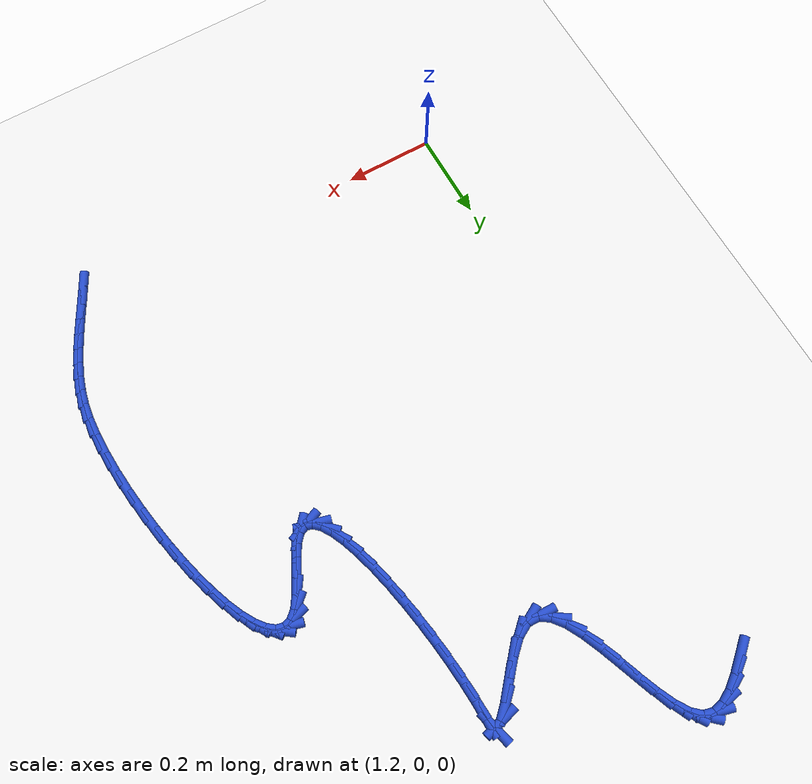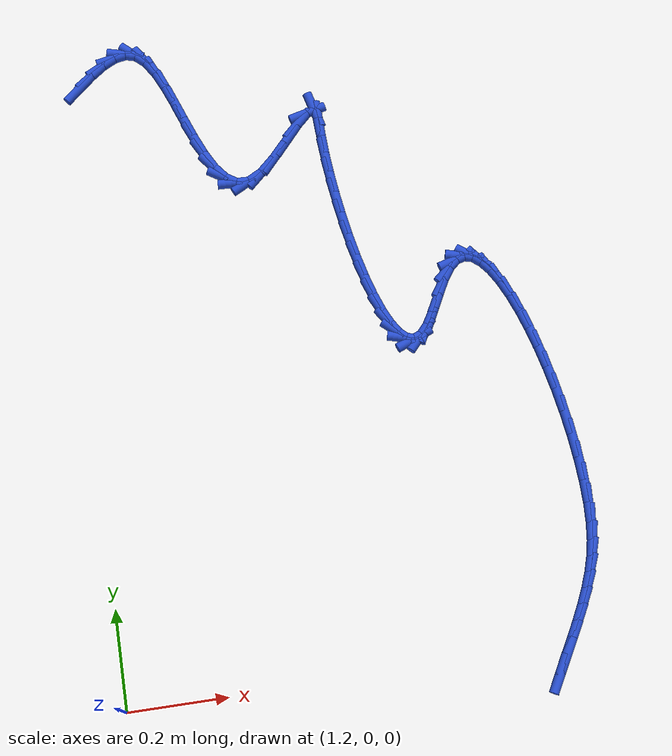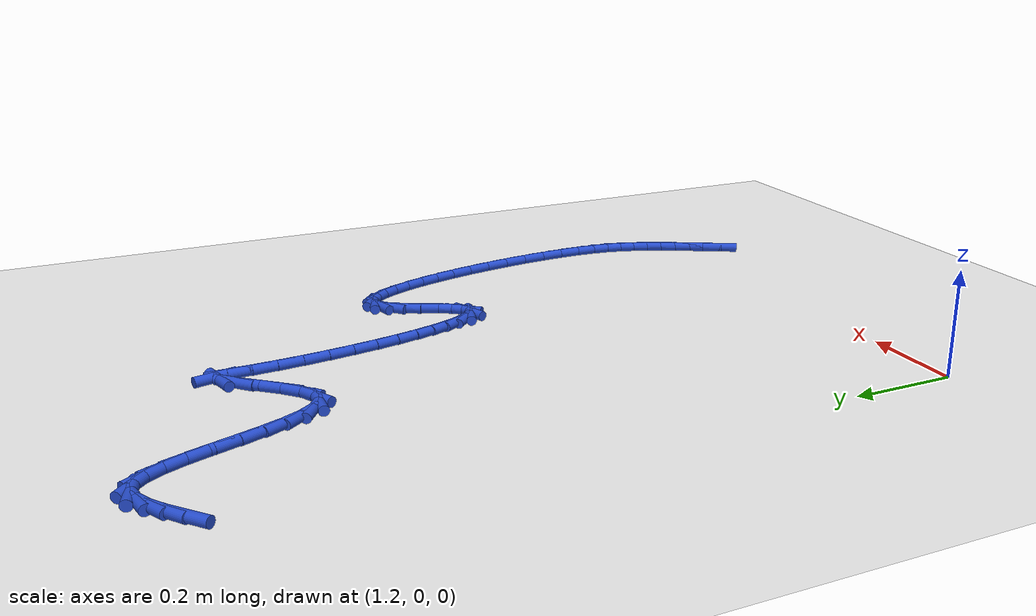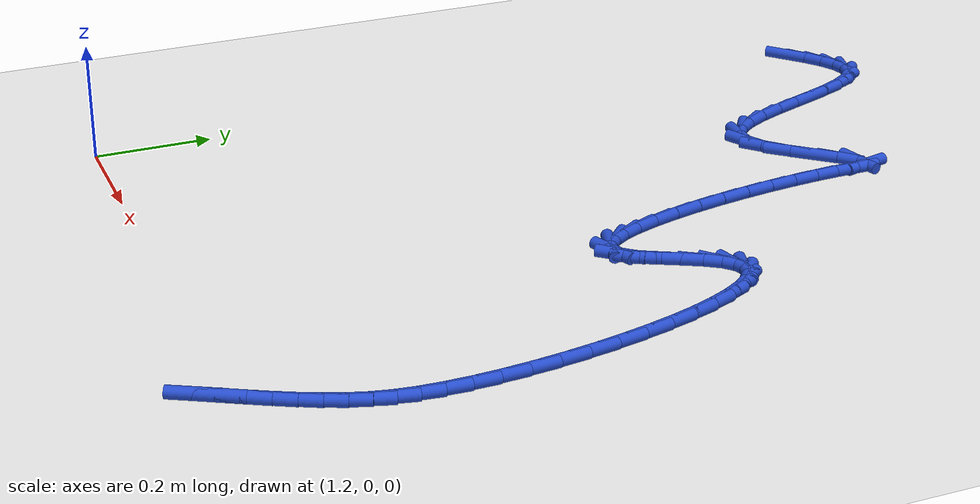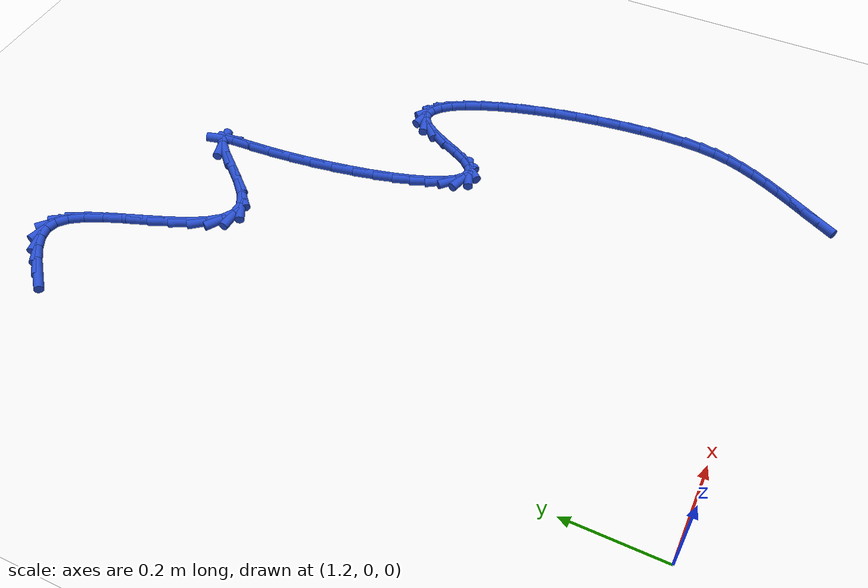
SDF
<sdf version="1.6">
 <world name="default">
  <model name="ground_plane">
   <static>1</static>
   <link name="link">
    <collision name="collision">
     <geometry><plane><normal>0 0 1</normal><size>100 100</size></plane></geometry>
     <surface><friction><ode><mu>100</mu><mu2>50</mu2></ode></friction></surface>
    </collision>
    <visual name="visual">
     <cast_shadows>0</cast_shadows>
     <geometry><plane><normal>0 0 1</normal><size>100 100</size></plane></geometry>
     <material>
      <script><uri>file://media/materials/scripts/gazebo.material</uri><name>Gazebo/WhiteGlow</name></script>
     </material>
    </visual>
   </link>
  </model>
  <model name="line">
   <link name="link_67">
    <pose>1.2501975870536717 1.3087763080058785 0.01 0 1.57 0.716367386241754</pose>
    <collision name="collision">
     <geometry><cylinder><radius>0.01</radius><length>0.08</length></cylinder></geometry>
    </collision>
    <visual name="visual">
     <material>
      <script><name>Gazebo/Blue</name><uri>file://media/materials/scripts/gazebo.material</uri></script>
     </material>
     <geometry><cylinder><radius>0.01</radius><length>0.08</length></cylinder></geometry>
    </visual>
   </link>
   <link name="link_68">
    <pose>1.2786753119204468 1.333570760631319 0.01 0 1.57 0.633275909170167</pose>
    <collision name="collision">
     <geometry><cylinder><radius>0.01</radius><length>0.08</length></cylinder></geometry>
    </collision>
    <visual name="visual">
     <material>
      <script><name>Gazebo/Blue</name><uri>file://media/materials/scripts/gazebo.material</uri></script>
     </material>
     <geometry><cylinder><radius>0.01</radius><length>0.08</length></cylinder></geometry>
    </visual>
   </link>
   <link name="link_69">
    <pose>1.305961632299537 1.353602853651737 0.01 0 1.57 0.4769127367618851</pose>
    <collision name="collision">
     <geometry><cylinder><radius>0.01</radius><length>0.08</length></cylinder></geometry>
    </collision>
    <visual name="visual">
     <material>
      <script><name>Gazebo/Blue</name><uri>file://media/materials/scripts/gazebo.material</uri></script>
     </material>
     <geometry><cylinder><radius>0.01</radius><length>0.08</length></cylinder></geometry>
    </visual>
   </link>
   <link name="link_70">
    <pose>1.3317548015721545 1.366930006420969 0.01 0 1.57 0.1925820298142139</pose>
    <collision name="collision">
     <geometry><cylinder><radius>0.01</radius><length>0.08</length></cylinder></geometry>
    </collision>
    <visual name="visual">
     <material>
      <script><name>Gazebo/Blue</name><uri>file://media/materials/scripts/gazebo.material</uri></script>
     </material>
     <geometry><cylinder><radius>0.01</radius><length>0.08</length></cylinder></geometry>
    </visual>
   </link>
   <link name="link_71">
    <pose>1.3557530731195113 1.3716096382928513 0.01 0 1.57 -0.2635854516956681</pose>
    <collision name="collision">
     <geometry><cylinder><radius>0.01</radius><length>0.08</length></cylinder></geometry>
    </collision>
    <visual name="visual">
     <material>
      <script><name>Gazebo/Blue</name><uri>file://media/materials/scripts/gazebo.material</uri></script>
     </material>
     <geometry><cylinder><radius>0.01</radius><length>0.08</length></cylinder></geometry>
    </visual>
   </link>
   <link name="link_72">
    <pose>1.3776547003228194 1.3656991686212203 0.01 0 1.57 -0.7359976320520708</pose>
    <collision name="collision">
     <geometry><cylinder><radius>0.01</radius><length>0.08</length></cylinder></geometry>
    </collision>
    <visual name="visual">
     <material>
      <script><name>Gazebo/Blue</name><uri>file://media/materials/scripts/gazebo.material</uri></script>
     </material>
     <geometry><cylinder><radius>0.01</radius><length>0.08</length></cylinder></geometry>
    </visual>
   </link>
   <link name="link_73">
    <pose>1.3972812074850343 1.34792193090201 0.01 0 1.57 -1.0043184698102539</pose>
    <collision name="collision">
     <geometry><cylinder><radius>0.01</radius><length>0.08</length></cylinder></geometry>
    </collision>
    <visual name="visual">
     <material>
      <script><name>Gazebo/Blue</name><uri>file://media/materials/scripts/gazebo.material</uri></script>
     </material>
     <geometry><cylinder><radius>0.01</radius><length>0.08</length></cylinder></geometry>
    </visual>
   </link>
   <link name="link_74">
    <pose>1.4150161344698144 1.3200372877664874 0.01 0 1.57 -1.1369139280521008</pose>
    <collision name="collision">
     <geometry><cylinder><radius>0.01</radius><length>0.08</length></cylinder></geometry>
    </collision>
    <visual name="visual">
     <material>
      <script><name>Gazebo/Blue</name><uri>file://media/materials/scripts/gazebo.material</uri></script>
     </material>
     <geometry><cylinder><radius>0.01</radius><length>0.08</length></cylinder></geometry>
    </visual>
   </link>
   <link name="link_75">
    <pose>1.431403101026065 1.284669359389244 0.01 0 1.57 -1.201227389831444</pose>
    <collision name="collision">
     <geometry><cylinder><radius>0.01</radius><length>0.08</length></cylinder></geometry>
    </collision>
    <visual name="visual">
     <material>
      <script><name>Gazebo/Blue</name><uri>file://media/materials/scripts/gazebo.material</uri></script>
     </material>
     <geometry><cylinder><radius>0.01</radius><length>0.08</length></cylinder></geometry>
    </visual>
   </link>
   <link name="link_76">
    <pose>1.4469857385555425 1.2444423288940185 0.01 0 1.57 -1.2244979433720207</pose>
    <collision name="collision">
     <geometry><cylinder><radius>0.01</radius><length>0.08</length></cylinder></geometry>
    </collision>
    <visual name="visual">
     <material>
      <script><name>Gazebo/Blue</name><uri>file://media/materials/scripts/gazebo.material</uri></script>
     </material>
     <geometry><cylinder><radius>0.01</radius><length>0.08</length></cylinder></geometry>
    </visual>
   </link>
   <link name="link_77">
    <pose>1.4623076784600044 1.2019803794045525 0.01 0 1.57 -1.215622617131493</pose>
    <collision name="collision">
     <geometry><cylinder><radius>0.01</radius><length>0.08</length></cylinder></geometry>
    </collision>
    <visual name="visual">
     <material>
      <script><name>Gazebo/Blue</name><uri>file://media/materials/scripts/gazebo.material</uri></script>
     </material>
     <geometry><cylinder><radius>0.01</radius><length>0.08</length></cylinder></geometry>
    </visual>
   </link>
   <link name="link_78">
    <pose>1.4779125521412082 1.1599076940445852 0.01 0 1.57 -1.172590471994724</pose>
    <collision name="collision">
     <geometry><cylinder><radius>0.01</radius><length>0.08</length></cylinder></geometry>
    </collision>
    <visual name="visual">
     <material>
      <script><name>Gazebo/Blue</name><uri>file://media/materials/scripts/gazebo.material</uri></script>
     </material>
     <geometry><cylinder><radius>0.01</radius><length>0.08</length></cylinder></geometry>
    </visual>
   </link>
   <link name="link_79">
    <pose>1.4943439910009113 1.1208484559378584 0.01 0 1.57 -1.0813801067641453</pose>
    <collision name="collision">
     <geometry><cylinder><radius>0.01</radius><length>0.08</length></cylinder></geometry>
    </collision>
    <visual name="visual">
     <material>
      <script><name>Gazebo/Blue</name><uri>file://media/materials/scripts/gazebo.material</uri></script>
     </material>
     <geometry><cylinder><radius>0.01</radius><length>0.08</length></cylinder></geometry>
    </visual>
   </link>
   <link name="link_80">
    <pose>1.5121456264408704 1.0874268482081115 0.01 0 1.57 -0.9061295648906493</pose>
    <collision name="collision">
     <geometry><cylinder><radius>0.01</radius><length>0.08</length></cylinder></geometry>
    </collision>
    <visual name="visual">
     <material>
      <script><name>Gazebo/Blue</name><uri>file://media/materials/scripts/gazebo.material</uri></script>
     </material>
     <geometry><cylinder><radius>0.01</radius><length>0.08</length></cylinder></geometry>
    </visual>
   </link>
   <link name="link_81">
    <pose>1.5318610898628429 1.0622670539790853 0.01 0 1.57 -0.571968308214303</pose>
    <collision name="collision">
     <geometry><cylinder><radius>0.01</radius><length>0.08</length></cylinder></geometry>
    </collision>
    <visual name="visual">
     <material>
      <script><name>Gazebo/Blue</name><uri>file://media/materials/scripts/gazebo.material</uri></script>
     </material>
     <geometry><cylinder><radius>0.01</radius><length>0.08</length></cylinder></geometry>
    </visual>
   </link>
   <link name="link_82">
    <pose>1.5540340126685865 1.0479932563745198 0.01 0 1.57 -0.030324277638084523</pose>
    <collision name="collision">
     <geometry><cylinder><radius>0.01</radius><length>0.08</length></cylinder></geometry>
    </collision>
    <visual name="visual">
     <material>
      <script><name>Gazebo/Blue</name><uri>file://media/materials/scripts/gazebo.material</uri></script>
     </material>
     <geometry><cylinder><radius>0.01</radius><length>0.08</length></cylinder></geometry>
    </visual>
   </link>
   <link name="link_83">
    <pose>1.5792080262598578 1.0472296385181556 0.01 0 1.57 0.488438530787838</pose>
    <collision name="collision">
     <geometry><cylinder><radius>0.01</radius><length>0.08</length></cylinder></geometry>
    </collision>
    <visual name="visual">
     <material>
      <script><name>Gazebo/Blue</name><uri>file://media/materials/scripts/gazebo.material</uri></script>
     </material>
     <geometry><cylinder><radius>0.01</radius><length>0.08</length></cylinder></geometry>
    </visual>
   </link>
   <link name="link_84">
    <pose>1.6078879900607752 1.0624697153382374 0.01 0 1.57 0.7491044119457306</pose>
    <collision name="collision">
     <geometry><cylinder><radius>0.01</radius><length>0.08</length></cylinder></geometry>
    </collision>
    <visual name="visual">
     <material>
      <script><name>Gazebo/Blue</name><uri>file://media/materials/scripts/gazebo.material</uri></script>
     </material>
     <geometry><cylinder><radius>0.01</radius><length>0.08</length></cylinder></geometry>
    </visual>
   </link>
   <link name="link_85">
    <pose>1.6392111478579903 1.091597903172755 0.01 0 1.57 0.8419404406970371</pose>
    <collision name="collision">
     <geometry><cylinder><radius>0.01</radius><length>0.08</length></cylinder></geometry>
    </collision>
    <visual name="visual">
     <material>
      <script><name>Gazebo/Blue</name><uri>file://media/materials/scripts/gazebo.material</uri></script>
     </material>
     <geometry><cylinder><radius>0.01</radius><length>0.08</length></cylinder></geometry>
    </visual>
   </link>
   <link name="link_86">
    <pose>1.6706149747542274 1.1267701071974905 0.01 0 1.57 0.8531974811785401</pose>
    <collision name="collision">
     <geometry><cylinder><radius>0.01</radius><length>0.08</length></cylinder></geometry>
    </collision>
    <visual name="visual">
     <material>
      <script><name>Gazebo/Blue</name><uri>file://media/materials/scripts/gazebo.material</uri></script>
     </material>
     <geometry><cylinder><radius>0.01</radius><length>0.08</length></cylinder></geometry>
    </visual>
   </link>
   <link name="link_87">
    <pose>1.6994307572794736 1.159784358937535 0.01 0 1.57 0.7658242080664301</pose>
    <collision name="collision">
     <geometry><cylinder><radius>0.01</radius><length>0.08</length></cylinder></geometry>
    </collision>
    <visual name="visual">
     <material>
      <script><name>Gazebo/Blue</name><uri>file://media/materials/scripts/gazebo.material</uri></script>
     </material>
     <geometry><cylinder><radius>0.01</radius><length>0.08</length></cylinder></geometry>
    </visual>
   </link>
   <link name="link_88">
    <pose>1.722989781963713 1.1824386899179797 0.01 0 1.57 0.2560280493892144</pose>
    <collision name="collision">
     <geometry><cylinder><radius>0.01</radius><length>0.08</length></cylinder></geometry>
    </collision>
    <visual name="visual">
     <material>
      <script><name>Gazebo/Blue</name><uri>file://media/materials/scripts/gazebo.material</uri></script>
     </material>
     <geometry><cylinder><radius>0.01</radius><length>0.08</length></cylinder></geometry>
    </visual>
   </link>
   <link name="link_89">
    <pose>1.7386233353369314 1.1865311316639156 0.01 0 1.57 -1.3269661973447817</pose>
    <collision name="collision">
     <geometry><cylinder><radius>0.01</radius><length>0.08</length></cylinder></geometry>
    </collision>
    <visual name="visual">
     <material>
      <script><name>Gazebo/Blue</name><uri>file://media/materials/scripts/gazebo.material</uri></script>
     </material>
     <geometry><cylinder><radius>0.01</radius><length>0.08</length></cylinder></geometry>
    </visual>
   </link>
   <link name="link_90">
    <pose>1.744056129160093 1.1646933910556962 0.01 0 1.57 -1.5576998092884444</pose>
    <collision name="collision">
     <geometry><cylinder><radius>0.01</radius><length>0.08</length></cylinder></geometry>
    </collision>
    <visual name="visual">
     <material>
      <script><name>Gazebo/Blue</name><uri>file://media/materials/scripts/gazebo.material</uri></script>
     </material>
     <geometry><cylinder><radius>0.01</radius><length>0.08</length></cylinder></geometry>
    </visual>
   </link>
   <link name="link_91">
    <pose>1.7445676527714071 1.1256376370793066 0.01 0 1.57 -1.5264363805659105</pose>
    <collision name="collision">
     <geometry><cylinder><radius>0.01</radius><length>0.08</length></cylinder></geometry>
    </collision>
    <visual name="visual">
     <material>
      <script><name>Gazebo/Blue</name><uri>file://media/materials/scripts/gazebo.material</uri></script>
     </material>
     <geometry><cylinder><radius>0.01</radius><length>0.08</length></cylinder></geometry>
    </visual>
   </link>
   <link name="link_92">
    <pose>1.746498964059134 1.082128920973487 0.01 0 1.57 -1.494124606870481</pose>
    <collision name="collision">
     <geometry><cylinder><radius>0.01</radius><length>0.08</length></cylinder></geometry>
    </collision>
    <visual name="visual">
     <material>
      <script><name>Gazebo/Blue</name><uri>file://media/materials/scripts/gazebo.material</uri></script>
     </material>
     <geometry><cylinder><radius>0.01</radius><length>0.08</length></cylinder></geometry>
    </visual>
   </link>
   <link name="link_93">
    <pose>1.7500561385985587 1.0358249973916336 0.01 0 1.57 -1.4652197726367093</pose>
    <collision name="collision">
     <geometry><cylinder><radius>0.01</radius><length>0.08</length></cylinder></geometry>
    </collision>
    <visual name="visual">
     <material>
      <script><name>Gazebo/Blue</name><uri>file://media/materials/scripts/gazebo.material</uri></script>
     </material>
     <geometry><cylinder><radius>0.01</radius><length>0.08</length></cylinder></geometry>
    </visual>
   </link>
   <link name="link_94">
    <pose>1.755142101784879 0.9878308908576556 0.01 0 1.57 -1.4374269321969713</pose>
    <collision name="collision">
     <geometry><cylinder><radius>0.01</radius><length>0.08</length></cylinder></geometry>
    </collision>
    <visual name="visual">
     <material>
      <script><name>Gazebo/Blue</name><uri>file://media/materials/scripts/gazebo.material</uri></script>
     </material>
     <geometry><cylinder><radius>0.01</radius><length>0.08</length></cylinder></geometry>
    </visual>
   </link>
   <link name="link_95">
    <pose>1.7616597790132902 0.9392516258954602 0.01 0 1.57 -1.4088396408027253</pose>
    <collision name="collision">
     <geometry><cylinder><radius>0.01</radius><length>0.08</length></cylinder></geometry>
    </collision>
    <visual name="visual">
     <material>
      <script><name>Gazebo/Blue</name><uri>file://media/materials/scripts/gazebo.material</uri></script>
     </material>
     <geometry><cylinder><radius>0.01</radius><length>0.08</length></cylinder></geometry>
    </visual>
   </link>
   <link name="link_96">
    <pose>1.769512095678988 0.8911922270289568 0.01 0 1.57 -1.3774838531978784</pose>
    <collision name="collision">
     <geometry><cylinder><radius>0.01</radius><length>0.08</length></cylinder></geometry>
    </collision>
    <visual name="visual">
     <material>
      <script><name>Gazebo/Blue</name><uri>file://media/materials/scripts/gazebo.material</uri></script>
     </material>
     <geometry><cylinder><radius>0.01</radius><length>0.08</length></cylinder></geometry>
    </visual>
   </link>
   <link name="link_97">
    <pose>1.778601977177169 0.8447577187820537 0.01 0 1.57 -1.3408563843993417</pose>
    <collision name="collision">
     <geometry><cylinder><radius>0.01</radius><length>0.08</length></cylinder></geometry>
    </collision>
    <visual name="visual">
     <material>
      <script><name>Gazebo/Blue</name><uri>file://media/materials/scripts/gazebo.material</uri></script>
     </material>
     <geometry><cylinder><radius>0.01</radius><length>0.08</length></cylinder></geometry>
    </visual>
   </link>
   <link name="link_98">
    <pose>1.78883234890303 0.8010531256786589 0.01 0 1.57 -1.2952244446867087</pose>
    <collision name="collision">
     <geometry><cylinder><radius>0.01</radius><length>0.08</length></cylinder></geometry>
    </collision>
    <visual name="visual">
     <material>
      <script><name>Gazebo/Blue</name><uri>file://media/materials/scripts/gazebo.material</uri></script>
     </material>
     <geometry><cylinder><radius>0.01</radius><length>0.08</length></cylinder></geometry>
    </visual>
   </link>
   <link name="link_99">
    <pose>1.8001061362517663 0.7611834722426807 0.01 0 1.57 -1.2342557412049777</pose>
    <collision name="collision">
     <geometry><cylinder><radius>0.01</radius><length>0.08</length></cylinder></geometry>
    </collision>
    <visual name="visual">
     <material>
      <script><name>Gazebo/Blue</name><uri>file://media/materials/scripts/gazebo.material</uri></script>
     </material>
     <geometry><cylinder><radius>0.01</radius><length>0.08</length></cylinder></geometry>
    </visual>
   </link>
   <link name="link_100">
    <pose>1.812326264618575 0.7262537829980271 0.01 0 1.57 -1.1458921334695784</pose>
    <collision name="collision">
     <geometry><cylinder><radius>0.01</radius><length>0.08</length></cylinder></geometry>
    </collision>
    <visual name="visual">
     <material>
      <script><name>Gazebo/Blue</name><uri>file://media/materials/scripts/gazebo.material</uri></script>
     </material>
     <geometry><cylinder><radius>0.01</radius><length>0.08</length></cylinder></geometry>
    </visual>
   </link>
   <link name="link_101">
    <pose>1.8253956593986516 0.6973690824686074 0.01 0 1.57 -1.004380832637521</pose>
    <collision name="collision">
     <geometry><cylinder><radius>0.01</radius><length>0.08</length></cylinder></geometry>
    </collision>
    <visual name="visual">
     <material>
      <script><name>Gazebo/Blue</name><uri>file://media/materials/scripts/gazebo.material</uri></script>
     </material>
     <geometry><cylinder><radius>0.01</radius><length>0.08</length></cylinder></geometry>
    </visual>
   </link>
   <link name="link_102">
    <pose>1.839217245987193 0.6756343951783297 0.01 0 1.57 -0.7497485979769366</pose>
    <collision name="collision">
     <geometry><cylinder><radius>0.01</radius><length>0.08</length></cylinder></geometry>
    </collision>
    <visual name="visual">
     <material>
      <script><name>Gazebo/Blue</name><uri>file://media/materials/scripts/gazebo.material</uri></script>
     </material>
     <geometry><cylinder><radius>0.01</radius><length>0.08</length></cylinder></geometry>
    </visual>
   </link>
   <link name="link_103">
    <pose>1.8536939497793938 0.6621547456511016 0.01 0 1.57 -0.2674404097632857</pose>
    <collision name="collision">
     <geometry><cylinder><radius>0.01</radius><length>0.08</length></cylinder></geometry>
    </collision>
    <visual name="visual">
     <material>
      <script><name>Gazebo/Blue</name><uri>file://media/materials/scripts/gazebo.material</uri></script>
     </material>
     <geometry><cylinder><radius>0.01</radius><length>0.08</length></cylinder></geometry>
    </visual>
   </link>
   <link name="link_104">
    <pose>1.8687286961704532 0.6580351584108324 0.01 0 1.57 0.3886693607534749</pose>
    <collision name="collision">
     <geometry><cylinder><radius>0.01</radius><length>0.08</length></cylinder></geometry>
    </collision>
    <visual name="visual">
     <material>
      <script><name>Gazebo/Blue</name><uri>file://media/materials/scripts/gazebo.material</uri></script>
     </material>
     <geometry><cylinder><radius>0.01</radius><length>0.08</length></cylinder></geometry>
    </visual>
   </link>
   <link name="link_105">
    <pose>1.884224410555564 0.66438065798143 0.01 0 1.57 0.8439257345124012</pose>
    <collision name="collision">
     <geometry><cylinder><radius>0.01</radius><length>0.08</length></cylinder></geometry>
    </collision>
    <visual name="visual">
     <material>
      <script><name>Gazebo/Blue</name><uri>file://media/materials/scripts/gazebo.material</uri></script>
     </material>
     <geometry><cylinder><radius>0.01</radius><length>0.08</length></cylinder></geometry>
    </visual>
   </link>
   <link name="link_106">
    <pose>1.9000847784785353 0.6822153720879633 0.01 0 1.57 1.0406508497942824</pose>
    <collision name="collision">
     <geometry><cylinder><radius>0.01</radius><length>0.08</length></cylinder></geometry>
    </collision>
    <visual name="visual">
     <material>
      <script><name>Gazebo/Blue</name><uri>file://media/materials/scripts/gazebo.material</uri></script>
     </material>
     <geometry><cylinder><radius>0.01</radius><length>0.08</length></cylinder></geometry>
    </visual>
   </link>
   <link name="link_107">
    <pose>1.9162396575466347 0.7097781360492286 0.01 0 1.57 1.0982671662635726</pose>
    <collision name="collision">
     <geometry><cylinder><radius>0.01</radius><length>0.08</length></cylinder></geometry>
    </collision>
    <visual name="visual">
     <material>
      <script><name>Gazebo/Blue</name><uri>file://media/materials/scripts/gazebo.material</uri></script>
     </material>
     <geometry><cylinder><radius>0.01</radius><length>0.08</length></cylinder></geometry>
    </visual>
   </link>
   <link name="link_108">
    <pose>1.9326510689052174 0.741884865988822 0.01 0 1.57 1.0817906844748175</pose>
    <collision name="collision">
     <geometry><cylinder><radius>0.01</radius><length>0.08</length></cylinder></geometry>
    </collision>
    <visual name="visual">
     <material>
      <script><name>Gazebo/Blue</name><uri>file://media/materials/scripts/gazebo.material</uri></script>
     </material>
     <geometry><cylinder><radius>0.01</radius><length>0.08</length></cylinder></geometry>
    </visual>
   </link>
   <link name="link_109">
    <pose>1.949283008128184 0.7731413547118576 0.01 0 1.57 0.9789170348275068</pose>
    <collision name="collision">
     <geometry><cylinder><radius>0.01</radius><length>0.08</length></cylinder></geometry>
    </collision>
    <visual name="visual">
     <material>
      <script><name>Gazebo/Blue</name><uri>file://media/materials/scripts/gazebo.material</uri></script>
     </material>
     <geometry><cylinder><radius>0.01</radius><length>0.08</length></cylinder></geometry>
    </visual>
   </link>
   <link name="link_110">
    <pose>1.9660994381647543 0.7981553494562204 0.01 0 1.57 0.7196707290265896</pose>
    <collision name="collision">
     <geometry><cylinder><radius>0.01</radius><length>0.08</length></cylinder></geometry>
    </collision>
    <visual name="visual">
     <material>
      <script><name>Gazebo/Blue</name><uri>file://media/materials/scripts/gazebo.material</uri></script>
     </material>
     <geometry><cylinder><radius>0.01</radius><length>0.08</length></cylinder></geometry>
    </visual>
   </link>
   <link name="link_111">
    <pose>1.9830398048261098 0.8130033353012349 0.01 0 1.57 0.278137815525657</pose>
    <collision name="collision">
     <geometry><cylinder><radius>0.01</radius><length>0.08</length></cylinder></geometry>
    </collision>
    <visual name="visual">
     <material>
      <script><name>Gazebo/Blue</name><uri>file://media/materials/scripts/gazebo.material</uri></script>
     </material>
     <geometry><cylinder><radius>0.01</radius><length>0.08</length></cylinder></geometry>
    </visual>
   </link>
   <link name="link_112">
    <pose>1.9999754922612656 0.8178391385968917 0.01 0 1.57 -0.25186608639640995</pose>
    <collision name="collision">
     <geometry><cylinder><radius>0.01</radius><length>0.08</length></cylinder></geometry>
    </collision>
    <visual name="visual">
     <material>
      <script><name>Gazebo/Blue</name><uri>file://media/materials/scripts/gazebo.material</uri></script>
     </material>
     <geometry><cylinder><radius>0.01</radius><length>0.08</length></cylinder></geometry>
    </visual>
   </link>
   <link name="link_113">
    <pose>2.016766169756084 0.813518383055965 0.01 0 1.57 -0.6528451971834083</pose>
    <collision name="collision">
     <geometry><cylinder><radius>0.01</radius><length>0.08</length></cylinder></geometry>
    </collision>
    <visual name="visual">
     <material>
      <script><name>Gazebo/Blue</name><uri>file://media/materials/scripts/gazebo.material</uri></script>
     </material>
     <geometry><cylinder><radius>0.01</radius><length>0.08</length></cylinder></geometry>
    </visual>
   </link>
   <link name="link_114">
    <pose>2.0332715065964257 0.800896692391228 0.01 0 1.57 -0.8952639110102747</pose>
    <collision name="collision">
     <geometry><cylinder><radius>0.01</radius><length>0.08</length></cylinder></geometry>
    </collision>
    <visual name="visual">
     <material>
      <script><name>Gazebo/Blue</name><uri>file://media/materials/scripts/gazebo.material</uri></script>
     </material>
     <geometry><cylinder><radius>0.01</radius><length>0.08</length></cylinder></geometry>
    </visual>
   </link>
   <link name="link_115">
    <pose>2.0493511720681536 0.7808296903154539 0.01 0 1.57 -1.043732127911265</pose>
    <collision name="collision">
     <geometry><cylinder><radius>0.01</radius><length>0.08</length></cylinder></geometry>
    </collision>
    <visual name="visual">
     <material>
      <script><name>Gazebo/Blue</name><uri>file://media/materials/scripts/gazebo.material</uri></script>
     </material>
     <geometry><cylinder><radius>0.01</radius><length>0.08</length></cylinder></geometry>
    </visual>
   </link>
   <link name="link_116">
    <pose>2.0648648354571306 0.7541730005414171 0.01 0 1.57 -1.1420150083876928</pose>
    <collision name="collision">
     <geometry><cylinder><radius>0.01</radius><length>0.08</length></cylinder></geometry>
    </collision>
    <visual name="visual">
     <material>
      <script><name>Gazebo/Blue</name><uri>file://media/materials/scripts/gazebo.material</uri></script>
     </material>
     <geometry><cylinder><radius>0.01</radius><length>0.08</length></cylinder></geometry>
    </visual>
   </link>
   <link name="link_117">
    <pose>2.0796721660492166 0.7217822467818901 0.01 0 1.57 -1.212385164351489</pose>
    <collision name="collision">
     <geometry><cylinder><radius>0.01</radius><length>0.08</length></cylinder></geometry>
    </collision>
    <visual name="visual">
     <material>
      <script><name>Gazebo/Blue</name><uri>file://media/materials/scripts/gazebo.material</uri></script>
     </material>
     <geometry><cylinder><radius>0.01</radius><length>0.08</length></cylinder></geometry>
    </visual>
   </link>
   <link name="link_118">
    <pose>2.0936328331302745 0.6845130527496475 0.01 0 1.57 -1.2663695571825233</pose>
    <collision name="collision">
     <geometry><cylinder><radius>0.01</radius><length>0.08</length></cylinder></geometry>
    </collision>
    <visual name="visual">
     <material>
      <script><name>Gazebo/Blue</name><uri>file://media/materials/scripts/gazebo.material</uri></script>
     </material>
     <geometry><cylinder><radius>0.01</radius><length>0.08</length></cylinder></geometry>
    </visual>
   </link>
   <link name="link_119">
    <pose>2.1066065059861665 0.6432210421574622 0.01 0 1.57 -1.3103921714625995</pose>
    <collision name="collision">
     <geometry><cylinder><radius>0.01</radius><length>0.08</length></cylinder></geometry>
    </collision>
    <visual name="visual">
     <material>
      <script><name>Gazebo/Blue</name><uri>file://media/materials/scripts/gazebo.material</uri></script>
     </material>
     <geometry><cylinder><radius>0.01</radius><length>0.08</length></cylinder></geometry>
    </visual>
   </link>
   <link name="link_120">
    <pose>2.118452853902754 0.598761838718108 0.01 0 1.57 -1.3483574223787609</pose>
    <collision name="collision">
     <geometry><cylinder><radius>0.01</radius><length>0.08</length></cylinder></geometry>
    </collision>
    <visual name="visual">
     <material>
      <script><name>Gazebo/Blue</name><uri>file://media/materials/scripts/gazebo.material</uri></script>
     </material>
     <geometry><cylinder><radius>0.01</radius><length>0.08</length></cylinder></geometry>
    </visual>
   </link>
   <link name="link_121">
    <pose>2.129031546165899 0.5519910661443581 0.01 0 1.57 -1.382881696554209</pose>
    <collision name="collision">
     <geometry><cylinder><radius>0.01</radius><length>0.08</length></cylinder></geometry>
    </collision>
    <visual name="visual">
     <material>
      <script><name>Gazebo/Blue</name><uri>file://media/materials/scripts/gazebo.material</uri></script>
     </material>
     <geometry><cylinder><radius>0.01</radius><length>0.08</length></cylinder></geometry>
    </visual>
   </link>
   <link name="link_122">
    <pose>2.138202252061464 0.5037643481489856 0.01 0 1.57 -1.4159362583626436</pose>
    <collision name="collision">
     <geometry><cylinder><radius>0.01</radius><length>0.08</length></cylinder></geometry>
    </collision>
    <visual name="visual">
     <material>
      <script><name>Gazebo/Blue</name><uri>file://media/materials/scripts/gazebo.material</uri></script>
     </material>
     <geometry><cylinder><radius>0.01</radius><length>0.08</length></cylinder></geometry>
    </visual>
   </link>
   <link name="link_123">
    <pose>2.1458246408753108 0.4549373084447657 0.01 0 1.57 -1.4492341975125766</pose>
    <collision name="collision">
     <geometry><cylinder><radius>0.01</radius><length>0.08</length></cylinder></geometry>
    </collision>
    <visual name="visual">
     <material>
      <script><name>Gazebo/Blue</name><uri>file://media/materials/scripts/gazebo.material</uri></script>
     </material>
     <geometry><cylinder><radius>0.01</radius><length>0.08</length></cylinder></geometry>
    </visual>
   </link>
   <link name="link_124">
    <pose>2.151758381893301 0.40636557074447077 0.01 0 1.57 -1.4845236022559827</pose>
    <collision name="collision">
     <geometry><cylinder><radius>0.01</radius><length>0.08</length></cylinder></geometry>
    </collision>
    <visual name="visual">
     <material>
      <script><name>Gazebo/Blue</name><uri>file://media/materials/scripts/gazebo.material</uri></script>
     </material>
     <geometry><cylinder><radius>0.01</radius><length>0.08</length></cylinder></geometry>
    </visual>
   </link>
   <link name="link_125">
    <pose>2.155863144401297 0.3589047587608745 0.01 0 1.57 -1.523891796193761</pose>
    <collision name="collision">
     <geometry><cylinder><radius>0.01</radius><length>0.08</length></cylinder></geometry>
    </collision>
    <visual name="visual">
     <material>
      <script><name>Gazebo/Blue</name><uri>file://media/materials/scripts/gazebo.material</uri></script>
     </material>
     <geometry><cylinder><radius>0.01</radius><length>0.08</length></cylinder></geometry>
    </visual>
   </link>
   <link name="link_126">
    <pose>2.15799859768516 0.3134104962067499 0.01 0 1.57 -1.5701914034644338</pose>
    <collision name="collision">
     <geometry><cylinder><radius>0.01</radius><length>0.08</length></cylinder></geometry>
    </collision>
    <visual name="visual">
     <material>
      <script><name>Gazebo/Blue</name><uri>file://media/materials/scripts/gazebo.material</uri></script>
     </material>
     <geometry><cylinder><radius>0.01</radius><length>0.08</length></cylinder></geometry>
    </visual>
   </link>
   <link name="link_127">
    <pose>2.1580244110307536 0.27073840679487177 0.01 0 1.57 1.5138200392038297</pose>
    <collision name="collision">
     <geometry><cylinder><radius>0.01</radius><length>0.08</length></cylinder></geometry>
    </collision>
    <visual name="visual">
     <material>
      <script><name>Gazebo/Blue</name><uri>file://media/materials/scripts/gazebo.material</uri></script>
     </material>
     <geometry><cylinder><radius>0.01</radius><length>0.08</length></cylinder></geometry>
    </visual>
   </link>
   <link name="link_128">
    <pose>2.155800253723937 0.23174411423801286 0.01 0 1.57 1.4386376606865423</pose>
    <collision name="collision">
     <geometry><cylinder><radius>0.01</radius><length>0.08</length></cylinder></geometry>
    </collision>
    <visual name="visual">
     <material>
      <script><name>Gazebo/Blue</name><uri>file://media/materials/scripts/gazebo.material</uri></script>
     </material>
     <geometry><cylinder><radius>0.01</radius><length>0.08</length></cylinder></geometry>
    </visual>
   </link>
   <link name="link_129">
    <pose>2.151189921995717 0.1970626261473234 0.01 0 1.57 1.3493903928066608</pose>
    <collision name="collision">
     <geometry><cylinder><radius>0.01</radius><length>0.08</length></cylinder></geometry>
    </collision>
    <visual name="visual">
     <material>
      <script><name>Gazebo/Blue</name><uri>file://media/materials/scripts/gazebo.material</uri></script>
     </material>
     <geometry><cylinder><radius>0.01</radius><length>0.08</length></cylinder></geometry>
    </visual>
   </link>
   <link name="link_130">
    <pose>2.1440909550535197 0.1655251355304012 0.01 0 1.57 1.2630943335615086</pose>
    <collision name="collision">
     <geometry><cylinder><radius>0.01</radius><length>0.08</length></cylinder></geometry>
    </collision>
    <visual name="visual">
     <material>
      <script><name>Gazebo/Blue</name><uri>file://media/materials/scripts/gazebo.material</uri></script>
     </material>
     <geometry><cylinder><radius>0.01</radius><length>0.08</length></cylinder></geometry>
    </visual>
   </link>
   <link name="link_131">
    <pose>2.134424683560068 0.13510850070363756 0.01 0 1.57 1.193117558442768</pose>
    <collision name="collision">
     <geometry><cylinder><radius>0.01</radius><length>0.08</length></cylinder></geometry>
    </collision>
    <visual name="visual">
     <material>
      <script><name>Gazebo/Blue</name><uri>file://media/materials/scripts/gazebo.material</uri></script>
     </material>
     <geometry><cylinder><radius>0.01</radius><length>0.08</length></cylinder></geometry>
    </visual>
   </link>
   <link name="link_132">
    <pose>2.122350059494865 0.10467264583884218 0.01 0 1.57 1.1397820197149755</pose>
    <collision name="collision">
     <geometry><cylinder><radius>0.01</radius><length>0.08</length></cylinder></geometry>
    </collision>
    <visual name="visual">
     <material>
      <script><name>Gazebo/Blue</name><uri>file://media/materials/scripts/gazebo.material</uri></script>
     </material>
     <geometry><cylinder><radius>0.01</radius><length>0.08</length></cylinder></geometry>
    </visual>
   </link>
   <link name="link_133">
    <pose>2.1083102055829945 0.07414121826845603 0.01 0 1.57 1.1012950197419107</pose>
    <collision name="collision">
     <geometry><cylinder><radius>0.01</radius><length>0.08</length></cylinder></geometry>
    </collision>
    <visual name="visual">
     <material>
      <script><name>Gazebo/Blue</name><uri>file://media/materials/scripts/gazebo.material</uri></script>
     </material>
     <geometry><cylinder><radius>0.01</radius><length>0.08</length></cylinder></geometry>
    </visual>
   </link>
   <link name="link_134">
    <pose>2.092764969871651 0.043500472446784816 0.01 0 1.57 1.0762090398078639</pose>
    <collision name="collision">
     <geometry><cylinder><radius>0.01</radius><length>0.08</length></cylinder></geometry>
    </collision>
    <visual name="visual">
     <material>
      <script><name>Gazebo/Blue</name><uri>file://media/materials/scripts/gazebo.material</uri></script>
     </material>
     <geometry><cylinder><radius>0.01</radius><length>0.08</length></cylinder></geometry>
    </visual>
   </link>
   <link name="link_135">
    <pose>2.0761742004080284 0.012736662828133873 0.01 0 1.57 1.063464293423516</pose>
    <collision name="collision">
     <geometry><cylinder><radius>0.01</radius><length>0.08</length></cylinder></geometry>
    </collision>
    <visual name="visual">
     <material>
      <script><name>Gazebo/Blue</name><uri>file://media/materials/scripts/gazebo.material</uri></script>
     </material>
     <geometry><cylinder><radius>0.01</radius><length>0.08</length></cylinder></geometry>
    </visual>
   </link>
   <link name="link_136">
    <pose>2.0589977452393238 -0.01816395613319005 0.01 0 1.57 1.0624278730499626</pose>
    <collision name="collision">
     <geometry><cylinder><radius>0.01</radius><length>0.08</length></cylinder></geometry>
    </collision>
    <visual name="visual">
     <material>
      <script><name>Gazebo/Blue</name><uri>file://media/materials/scripts/gazebo.material</uri></script>
     </material>
     <geometry><cylinder><radius>0.01</radius><length>0.08</length></cylinder></geometry>
    </visual>
   </link>
   <link name="link_137">
    <pose>2.0416954524127315 -0.04921512998288169 0.01 0 1.57 1.072891131183071</pose>
    <collision name="collision">
     <geometry><cylinder><radius>0.01</radius><length>0.08</length></cylinder></geometry>
    </collision>
    <visual name="visual">
     <material>
      <script><name>Gazebo/Blue</name><uri>file://media/materials/scripts/gazebo.material</uri></script>
     </material>
     <geometry><cylinder><radius>0.01</radius><length>0.08</length></cylinder></geometry>
    </visual>
   </link>
  </model>
 </world>
</sdf>
